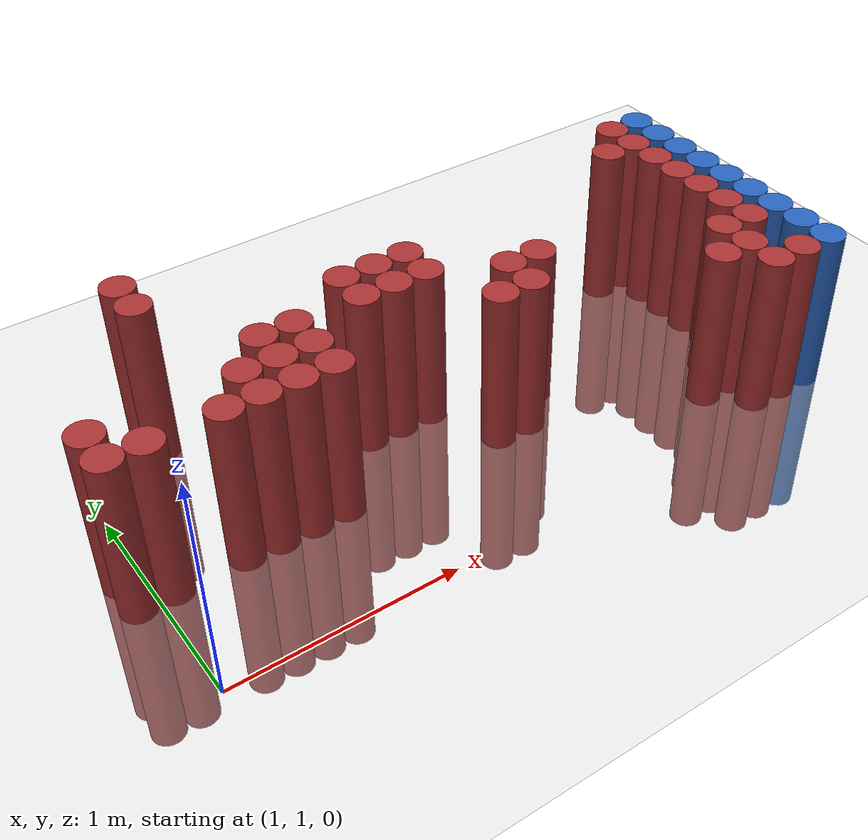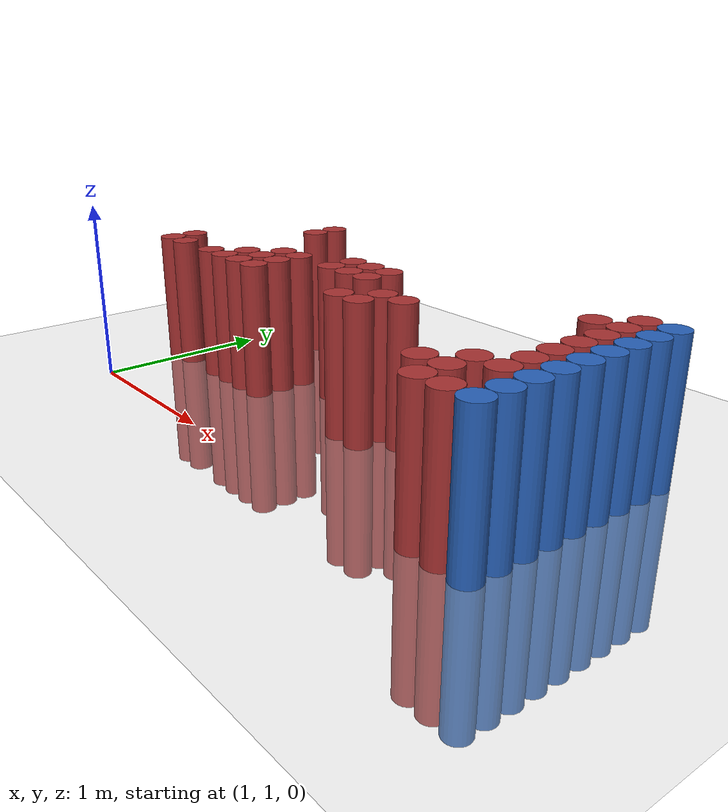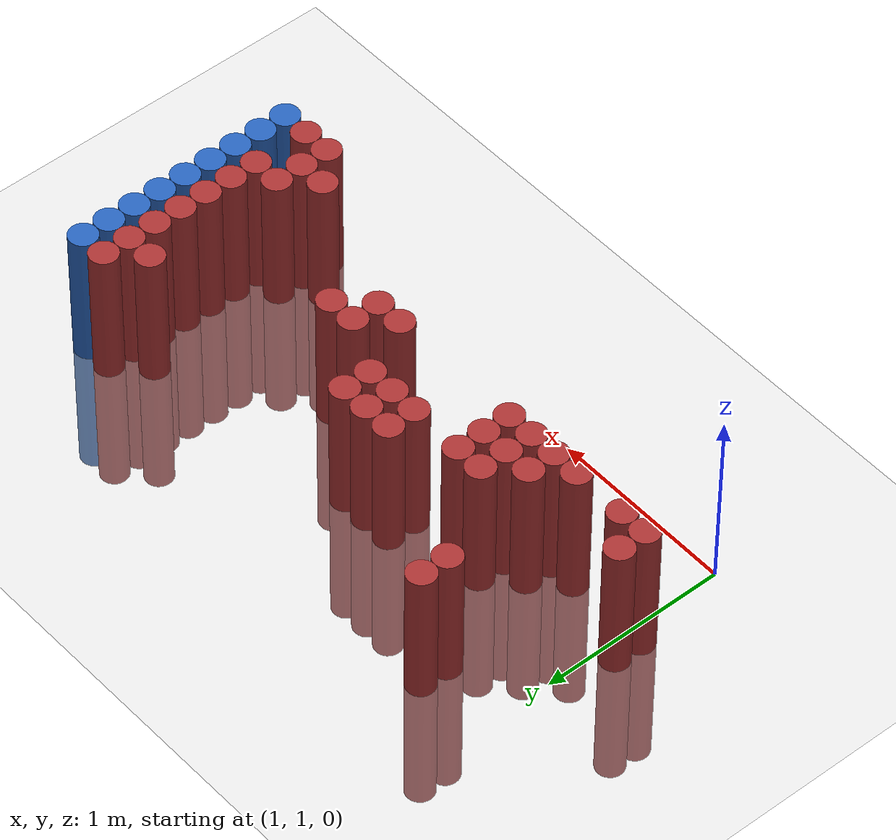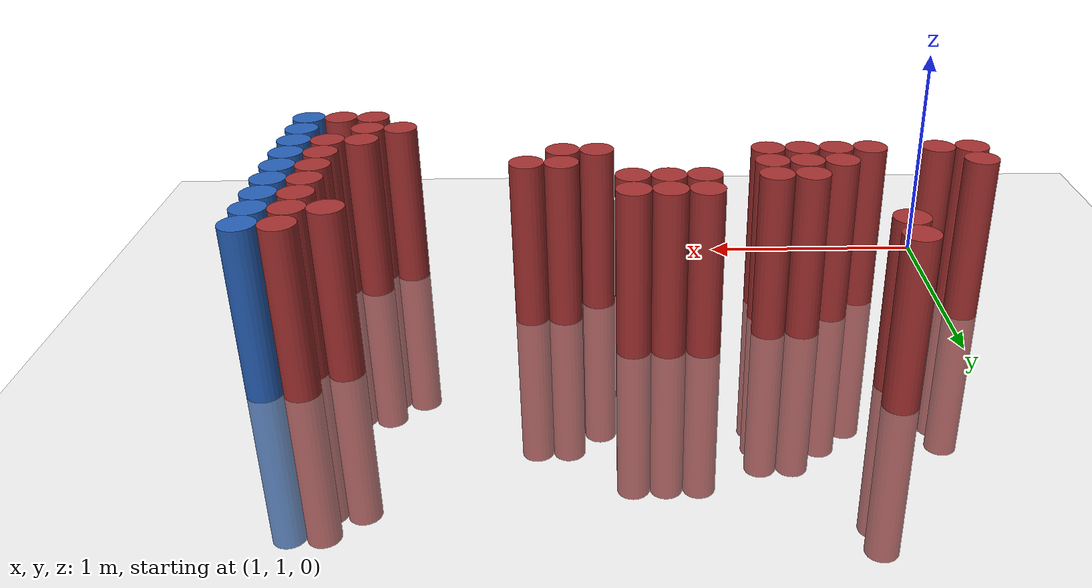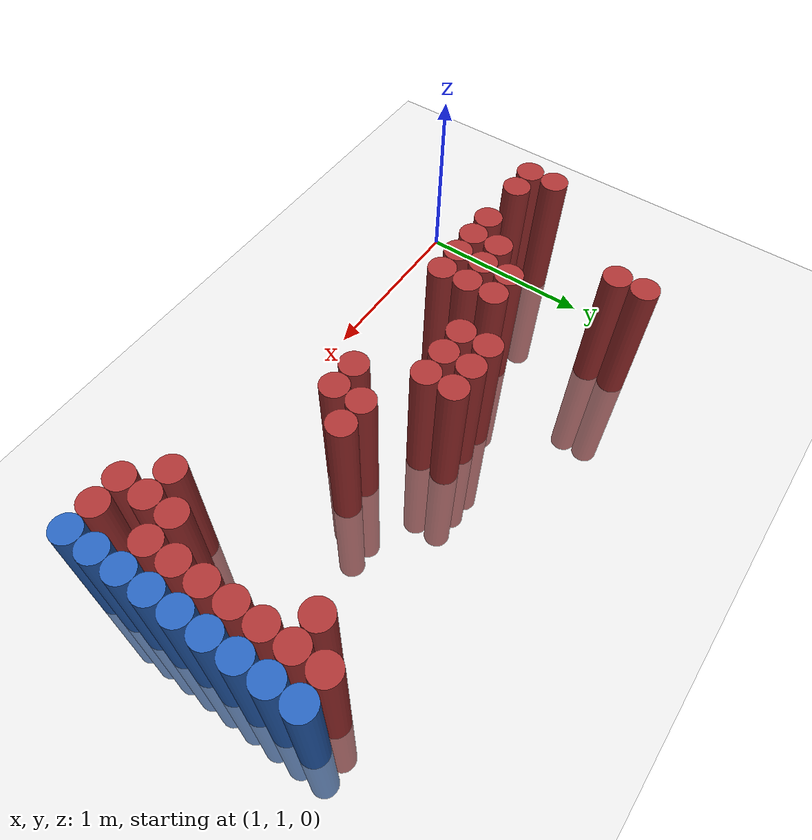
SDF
<sdf version="1.6">
 <world name="default">
  <model name="ground_plane">
   <static>1</static>
   <link name="link">
    <collision name="collision">
     <geometry><plane><normal>0 0 1</normal><size>100 100</size></plane></geometry>
     <surface><friction><ode><mu>100</mu><mu2>50</mu2></ode></friction></surface>
    </collision>
    <visual name="visual">
     <cast_shadows>0</cast_shadows>
     <geometry><plane><normal>0 0 1</normal><size>100 100</size></plane></geometry>
     <material>
      <script><uri>file://media/materials/scripts/gazebo.material</uri><name>Gazebo/Grey</name></script>
     </material>
    </visual>
   </link>
  </model>
  <model name="unit_cylinder_130">
   <static>1</static>
   <pose>3.925000 1.225000 0.000000 0.000000 0.000000 0.000000</pose>
   <link name="link">
    <inertial>
     <mass>1</mass>
     <inertia><ixx>0.145833</ixx><ixy>0</ixy><ixz>0</ixz><iyy>0.145833</iyy><iyz>0</iyz><izz>0.125</izz></inertia>
    </inertial>
    <collision name="collision">
     <geometry><cylinder><radius>0.075000</radius><length>1.5</length></cylinder></geometry>
    </collision>
    <visual name="visual">
     <geometry><cylinder><radius>0.075000</radius><length>1.5</length></cylinder></geometry>
     <material>
      <ambient>0.152000 0.379000 0.720000 1</ambient>
      <diffuse>0.152000 0.379000 0.720000 1</diffuse>
     </material>
     <material>
      <script><name>Gazebo/Grey</name><uri>file://media/materials/scripts/gazebo.material</uri></script>
     </material>
    </visual>
   </link>
  </model>
  <model name="unit_cylinder_132">
   <static>1</static>
   <pose>3.925000 1.375000 0.000000 0.000000 0.000000 0.000000</pose>
   <link name="link">
    <inertial>
     <mass>1</mass>
     <inertia><ixx>0.145833</ixx><ixy>0</ixy><ixz>0</ixz><iyy>0.145833</iyy><iyz>0</iyz><izz>0.125</izz></inertia>
    </inertial>
    <collision name="collision">
     <geometry><cylinder><radius>0.075000</radius><length>1.5</length></cylinder></geometry>
    </collision>
    <visual name="visual">
     <geometry><cylinder><radius>0.075000</radius><length>1.5</length></cylinder></geometry>
     <material>
      <ambient>0.152000 0.379000 0.720000 1</ambient>
      <diffuse>0.152000 0.379000 0.720000 1</diffuse>
     </material>
     <material>
      <script><name>Gazebo/Grey</name><uri>file://media/materials/scripts/gazebo.material</uri></script>
     </material>
    </visual>
   </link>
  </model>
  <model name="unit_cylinder_134">
   <static>1</static>
   <pose>3.925000 1.525000 0.000000 0.000000 0.000000 0.000000</pose>
   <link name="link">
    <inertial>
     <mass>1</mass>
     <inertia><ixx>0.145833</ixx><ixy>0</ixy><ixz>0</ixz><iyy>0.145833</iyy><iyz>0</iyz><izz>0.125</izz></inertia>
    </inertial>
    <collision name="collision">
     <geometry><cylinder><radius>0.075000</radius><length>1.5</length></cylinder></geometry>
    </collision>
    <visual name="visual">
     <geometry><cylinder><radius>0.075000</radius><length>1.5</length></cylinder></geometry>
     <material>
      <ambient>0.152000 0.379000 0.720000 1</ambient>
      <diffuse>0.152000 0.379000 0.720000 1</diffuse>
     </material>
     <material>
      <script><name>Gazebo/Grey</name><uri>file://media/materials/scripts/gazebo.material</uri></script>
     </material>
    </visual>
   </link>
  </model>
  <model name="unit_cylinder_136">
   <static>1</static>
   <pose>3.925000 1.675000 0.000000 0.000000 0.000000 0.000000</pose>
   <link name="link">
    <inertial>
     <mass>1</mass>
     <inertia><ixx>0.145833</ixx><ixy>0</ixy><ixz>0</ixz><iyy>0.145833</iyy><iyz>0</iyz><izz>0.125</izz></inertia>
    </inertial>
    <collision name="collision">
     <geometry><cylinder><radius>0.075000</radius><length>1.5</length></cylinder></geometry>
    </collision>
    <visual name="visual">
     <geometry><cylinder><radius>0.075000</radius><length>1.5</length></cylinder></geometry>
     <material>
      <ambient>0.152000 0.379000 0.720000 1</ambient>
      <diffuse>0.152000 0.379000 0.720000 1</diffuse>
     </material>
     <material>
      <script><name>Gazebo/Grey</name><uri>file://media/materials/scripts/gazebo.material</uri></script>
     </material>
    </visual>
   </link>
  </model>
  <model name="unit_cylinder_138">
   <static>1</static>
   <pose>3.925000 1.825000 0.000000 0.000000 0.000000 0.000000</pose>
   <link name="link">
    <inertial>
     <mass>1</mass>
     <inertia><ixx>0.145833</ixx><ixy>0</ixy><ixz>0</ixz><iyy>0.145833</iyy><iyz>0</iyz><izz>0.125</izz></inertia>
    </inertial>
    <collision name="collision">
     <geometry><cylinder><radius>0.075000</radius><length>1.5</length></cylinder></geometry>
    </collision>
    <visual name="visual">
     <geometry><cylinder><radius>0.075000</radius><length>1.5</length></cylinder></geometry>
     <material>
      <ambient>0.152000 0.379000 0.720000 1</ambient>
      <diffuse>0.152000 0.379000 0.720000 1</diffuse>
     </material>
     <material>
      <script><name>Gazebo/Grey</name><uri>file://media/materials/scripts/gazebo.material</uri></script>
     </material>
    </visual>
   </link>
  </model>
  <model name="unit_cylinder_140">
   <static>1</static>
   <pose>3.925000 1.975000 0.000000 0.000000 0.000000 0.000000</pose>
   <link name="link">
    <inertial>
     <mass>1</mass>
     <inertia><ixx>0.145833</ixx><ixy>0</ixy><ixz>0</ixz><iyy>0.145833</iyy><iyz>0</iyz><izz>0.125</izz></inertia>
    </inertial>
    <collision name="collision">
     <geometry><cylinder><radius>0.075000</radius><length>1.5</length></cylinder></geometry>
    </collision>
    <visual name="visual">
     <geometry><cylinder><radius>0.075000</radius><length>1.5</length></cylinder></geometry>
     <material>
      <ambient>0.152000 0.379000 0.720000 1</ambient>
      <diffuse>0.152000 0.379000 0.720000 1</diffuse>
     </material>
     <material>
      <script><name>Gazebo/Grey</name><uri>file://media/materials/scripts/gazebo.material</uri></script>
     </material>
    </visual>
   </link>
  </model>
  <model name="unit_cylinder_142">
   <static>1</static>
   <pose>3.925000 2.125000 0.000000 0.000000 0.000000 0.000000</pose>
   <link name="link">
    <inertial>
     <mass>1</mass>
     <inertia><ixx>0.145833</ixx><ixy>0</ixy><ixz>0</ixz><iyy>0.145833</iyy><iyz>0</iyz><izz>0.125</izz></inertia>
    </inertial>
    <collision name="collision">
     <geometry><cylinder><radius>0.075000</radius><length>1.5</length></cylinder></geometry>
    </collision>
    <visual name="visual">
     <geometry><cylinder><radius>0.075000</radius><length>1.5</length></cylinder></geometry>
     <material>
      <ambient>0.152000 0.379000 0.720000 1</ambient>
      <diffuse>0.152000 0.379000 0.720000 1</diffuse>
     </material>
     <material>
      <script><name>Gazebo/Grey</name><uri>file://media/materials/scripts/gazebo.material</uri></script>
     </material>
    </visual>
   </link>
  </model>
  <model name="unit_cylinder_144">
   <static>1</static>
   <pose>3.925000 2.275000 0.000000 0.000000 0.000000 0.000000</pose>
   <link name="link">
    <inertial>
     <mass>1</mass>
     <inertia><ixx>0.145833</ixx><ixy>0</ixy><ixz>0</ixz><iyy>0.145833</iyy><iyz>0</iyz><izz>0.125</izz></inertia>
    </inertial>
    <collision name="collision">
     <geometry><cylinder><radius>0.075000</radius><length>1.5</length></cylinder></geometry>
    </collision>
    <visual name="visual">
     <geometry><cylinder><radius>0.075000</radius><length>1.5</length></cylinder></geometry>
     <material>
      <ambient>0.152000 0.379000 0.720000 1</ambient>
      <diffuse>0.152000 0.379000 0.720000 1</diffuse>
     </material>
     <material>
      <script><name>Gazebo/Grey</name><uri>file://media/materials/scripts/gazebo.material</uri></script>
     </material>
    </visual>
   </link>
  </model>
  <model name="unit_cylinder_369">
   <static>1</static>
   <pose>0.925000 1.525000 0.000000 0.000000 0.000000 0.000000</pose>
   <link name="link">
    <inertial>
     <mass>1</mass>
     <inertia><ixx>0.145833</ixx><ixy>0</ixy><ixz>0</ixz><iyy>0.145833</iyy><iyz>0</iyz><izz>0.125</izz></inertia>
    </inertial>
    <collision name="collision">
     <geometry><cylinder><radius>0.075000</radius><length>1.5</length></cylinder></geometry>
    </collision>
    <visual name="visual">
     <geometry><cylinder><radius>0.075000</radius><length>1.5</length></cylinder></geometry>
     <material>
      <ambient>0.648000 0.192000 0.192000 1</ambient>
      <diffuse>0.648000 0.192000 0.192000 1</diffuse>
     </material>
     <material>
      <script><name>Gazebo/Grey</name><uri>file://media/materials/scripts/gazebo.material</uri></script>
     </material>
    </visual>
   </link>
  </model>
  <model name="unit_cylinder_370">
   <static>1</static>
   <pose>0.925000 1.675000 0.000000 0.000000 0.000000 0.000000</pose>
   <link name="link">
    <inertial>
     <mass>1</mass>
     <inertia><ixx>0.145833</ixx><ixy>0</ixy><ixz>0</ixz><iyy>0.145833</iyy><iyz>0</iyz><izz>0.125</izz></inertia>
    </inertial>
    <collision name="collision">
     <geometry><cylinder><radius>0.075000</radius><length>1.5</length></cylinder></geometry>
    </collision>
    <visual name="visual">
     <geometry><cylinder><radius>0.075000</radius><length>1.5</length></cylinder></geometry>
     <material>
      <ambient>0.648000 0.192000 0.192000 1</ambient>
      <diffuse>0.648000 0.192000 0.192000 1</diffuse>
     </material>
     <material>
      <script><name>Gazebo/Grey</name><uri>file://media/materials/scripts/gazebo.material</uri></script>
     </material>
    </visual>
   </link>
  </model>
  <model name="unit_cylinder_373">
   <static>1</static>
   <pose>1.075000 1.525000 0.000000 0.000000 0.000000 0.000000</pose>
   <link name="link">
    <inertial>
     <mass>1</mass>
     <inertia><ixx>0.145833</ixx><ixy>0</ixy><ixz>0</ixz><iyy>0.145833</iyy><iyz>0</iyz><izz>0.125</izz></inertia>
    </inertial>
    <collision name="collision">
     <geometry><cylinder><radius>0.075000</radius><length>1.5</length></cylinder></geometry>
    </collision>
    <visual name="visual">
     <geometry><cylinder><radius>0.075000</radius><length>1.5</length></cylinder></geometry>
     <material>
      <ambient>0.648000 0.192000 0.192000 1</ambient>
      <diffuse>0.648000 0.192000 0.192000 1</diffuse>
     </material>
     <material>
      <script><name>Gazebo/Grey</name><uri>file://media/materials/scripts/gazebo.material</uri></script>
     </material>
    </visual>
   </link>
  </model>
  <model name="unit_cylinder_379">
   <static>1</static>
   <pose>1.375000 1.525000 0.000000 0.000000 0.000000 0.000000</pose>
   <link name="link">
    <inertial>
     <mass>1</mass>
     <inertia><ixx>0.145833</ixx><ixy>0</ixy><ixz>0</ixz><iyy>0.145833</iyy><iyz>0</iyz><izz>0.125</izz></inertia>
    </inertial>
    <collision name="collision">
     <geometry><cylinder><radius>0.075000</radius><length>1.5</length></cylinder></geometry>
    </collision>
    <visual name="visual">
     <geometry><cylinder><radius>0.075000</radius><length>1.5</length></cylinder></geometry>
     <material>
      <ambient>0.648000 0.192000 0.192000 1</ambient>
      <diffuse>0.648000 0.192000 0.192000 1</diffuse>
     </material>
     <material>
      <script><name>Gazebo/Grey</name><uri>file://media/materials/scripts/gazebo.material</uri></script>
     </material>
    </visual>
   </link>
  </model>
  <model name="unit_cylinder_380">
   <static>1</static>
   <pose>1.375000 2.275000 0.000000 0.000000 0.000000 0.000000</pose>
   <link name="link">
    <inertial>
     <mass>1</mass>
     <inertia><ixx>0.145833</ixx><ixy>0</ixy><ixz>0</ixz><iyy>0.145833</iyy><iyz>0</iyz><izz>0.125</izz></inertia>
    </inertial>
    <collision name="collision">
     <geometry><cylinder><radius>0.075000</radius><length>1.5</length></cylinder></geometry>
    </collision>
    <visual name="visual">
     <geometry><cylinder><radius>0.075000</radius><length>1.5</length></cylinder></geometry>
     <material>
      <ambient>0.648000 0.192000 0.192000 1</ambient>
      <diffuse>0.648000 0.192000 0.192000 1</diffuse>
     </material>
     <material>
      <script><name>Gazebo/Grey</name><uri>file://media/materials/scripts/gazebo.material</uri></script>
     </material>
    </visual>
   </link>
  </model>
  <model name="unit_cylinder_381">
   <static>1</static>
   <pose>1.375000 2.425000 0.000000 0.000000 0.000000 0.000000</pose>
   <link name="link">
    <inertial>
     <mass>1</mass>
     <inertia><ixx>0.145833</ixx><ixy>0</ixy><ixz>0</ixz><iyy>0.145833</iyy><iyz>0</iyz><izz>0.125</izz></inertia>
    </inertial>
    <collision name="collision">
     <geometry><cylinder><radius>0.075000</radius><length>1.5</length></cylinder></geometry>
    </collision>
    <visual name="visual">
     <geometry><cylinder><radius>0.075000</radius><length>1.5</length></cylinder></geometry>
     <material>
      <ambient>0.648000 0.192000 0.192000 1</ambient>
      <diffuse>0.648000 0.192000 0.192000 1</diffuse>
     </material>
     <material>
      <script><name>Gazebo/Grey</name><uri>file://media/materials/scripts/gazebo.material</uri></script>
     </material>
    </visual>
   </link>
  </model>
  <model name="unit_cylinder_382">
   <static>1</static>
   <pose>1.525000 1.525000 0.000000 0.000000 0.000000 0.000000</pose>
   <link name="link">
    <inertial>
     <mass>1</mass>
     <inertia><ixx>0.145833</ixx><ixy>0</ixy><ixz>0</ixz><iyy>0.145833</iyy><iyz>0</iyz><izz>0.125</izz></inertia>
    </inertial>
    <collision name="collision">
     <geometry><cylinder><radius>0.075000</radius><length>1.5</length></cylinder></geometry>
    </collision>
    <visual name="visual">
     <geometry><cylinder><radius>0.075000</radius><length>1.5</length></cylinder></geometry>
     <material>
      <ambient>0.648000 0.192000 0.192000 1</ambient>
      <diffuse>0.648000 0.192000 0.192000 1</diffuse>
     </material>
     <material>
      <script><name>Gazebo/Grey</name><uri>file://media/materials/scripts/gazebo.material</uri></script>
     </material>
    </visual>
   </link>
  </model>
  <model name="unit_cylinder_383">
   <static>1</static>
   <pose>1.525000 1.675000 0.000000 0.000000 0.000000 0.000000</pose>
   <link name="link">
    <inertial>
     <mass>1</mass>
     <inertia><ixx>0.145833</ixx><ixy>0</ixy><ixz>0</ixz><iyy>0.145833</iyy><iyz>0</iyz><izz>0.125</izz></inertia>
    </inertial>
    <collision name="collision">
     <geometry><cylinder><radius>0.075000</radius><length>1.5</length></cylinder></geometry>
    </collision>
    <visual name="visual">
     <geometry><cylinder><radius>0.075000</radius><length>1.5</length></cylinder></geometry>
     <material>
      <ambient>0.648000 0.192000 0.192000 1</ambient>
      <diffuse>0.648000 0.192000 0.192000 1</diffuse>
     </material>
     <material>
      <script><name>Gazebo/Grey</name><uri>file://media/materials/scripts/gazebo.material</uri></script>
     </material>
    </visual>
   </link>
  </model>
  <model name="unit_cylinder_385">
   <static>1</static>
   <pose>1.675000 1.525000 0.000000 0.000000 0.000000 0.000000</pose>
   <link name="link">
    <inertial>
     <mass>1</mass>
     <inertia><ixx>0.145833</ixx><ixy>0</ixy><ixz>0</ixz><iyy>0.145833</iyy><iyz>0</iyz><izz>0.125</izz></inertia>
    </inertial>
    <collision name="collision">
     <geometry><cylinder><radius>0.075000</radius><length>1.5</length></cylinder></geometry>
    </collision>
    <visual name="visual">
     <geometry><cylinder><radius>0.075000</radius><length>1.5</length></cylinder></geometry>
     <material>
      <ambient>0.648000 0.192000 0.192000 1</ambient>
      <diffuse>0.648000 0.192000 0.192000 1</diffuse>
     </material>
     <material>
      <script><name>Gazebo/Grey</name><uri>file://media/materials/scripts/gazebo.material</uri></script>
     </material>
    </visual>
   </link>
  </model>
  <model name="unit_cylinder_386">
   <static>1</static>
   <pose>1.675000 1.675000 0.000000 0.000000 0.000000 0.000000</pose>
   <link name="link">
    <inertial>
     <mass>1</mass>
     <inertia><ixx>0.145833</ixx><ixy>0</ixy><ixz>0</ixz><iyy>0.145833</iyy><iyz>0</iyz><izz>0.125</izz></inertia>
    </inertial>
    <collision name="collision">
     <geometry><cylinder><radius>0.075000</radius><length>1.5</length></cylinder></geometry>
    </collision>
    <visual name="visual">
     <geometry><cylinder><radius>0.075000</radius><length>1.5</length></cylinder></geometry>
     <material>
      <ambient>0.648000 0.192000 0.192000 1</ambient>
      <diffuse>0.648000 0.192000 0.192000 1</diffuse>
     </material>
     <material>
      <script><name>Gazebo/Grey</name><uri>file://media/materials/scripts/gazebo.material</uri></script>
     </material>
    </visual>
   </link>
  </model>
  <model name="unit_cylinder_387">
   <static>1</static>
   <pose>1.675000 1.825000 0.000000 0.000000 0.000000 0.000000</pose>
   <link name="link">
    <inertial>
     <mass>1</mass>
     <inertia><ixx>0.145833</ixx><ixy>0</ixy><ixz>0</ixz><iyy>0.145833</iyy><iyz>0</iyz><izz>0.125</izz></inertia>
    </inertial>
    <collision name="collision">
     <geometry><cylinder><radius>0.075000</radius><length>1.5</length></cylinder></geometry>
    </collision>
    <visual name="visual">
     <geometry><cylinder><radius>0.075000</radius><length>1.5</length></cylinder></geometry>
     <material>
      <ambient>0.648000 0.192000 0.192000 1</ambient>
      <diffuse>0.648000 0.192000 0.192000 1</diffuse>
     </material>
     <material>
      <script><name>Gazebo/Grey</name><uri>file://media/materials/scripts/gazebo.material</uri></script>
     </material>
    </visual>
   </link>
  </model>
  <model name="unit_cylinder_388">
   <static>1</static>
   <pose>1.825000 1.525000 0.000000 0.000000 0.000000 0.000000</pose>
   <link name="link">
    <inertial>
     <mass>1</mass>
     <inertia><ixx>0.145833</ixx><ixy>0</ixy><ixz>0</ixz><iyy>0.145833</iyy><iyz>0</iyz><izz>0.125</izz></inertia>
    </inertial>
    <collision name="collision">
     <geometry><cylinder><radius>0.075000</radius><length>1.5</length></cylinder></geometry>
    </collision>
    <visual name="visual">
     <geometry><cylinder><radius>0.075000</radius><length>1.5</length></cylinder></geometry>
     <material>
      <ambient>0.648000 0.192000 0.192000 1</ambient>
      <diffuse>0.648000 0.192000 0.192000 1</diffuse>
     </material>
     <material>
      <script><name>Gazebo/Grey</name><uri>file://media/materials/scripts/gazebo.material</uri></script>
     </material>
    </visual>
   </link>
  </model>
  <model name="unit_cylinder_389">
   <static>1</static>
   <pose>1.825000 1.675000 0.000000 0.000000 0.000000 0.000000</pose>
   <link name="link">
    <inertial>
     <mass>1</mass>
     <inertia><ixx>0.145833</ixx><ixy>0</ixy><ixz>0</ixz><iyy>0.145833</iyy><iyz>0</iyz><izz>0.125</izz></inertia>
    </inertial>
    <collision name="collision">
     <geometry><cylinder><radius>0.075000</radius><length>1.5</length></cylinder></geometry>
    </collision>
    <visual name="visual">
     <geometry><cylinder><radius>0.075000</radius><length>1.5</length></cylinder></geometry>
     <material>
      <ambient>0.648000 0.192000 0.192000 1</ambient>
      <diffuse>0.648000 0.192000 0.192000 1</diffuse>
     </material>
     <material>
      <script><name>Gazebo/Grey</name><uri>file://media/materials/scripts/gazebo.material</uri></script>
     </material>
    </visual>
   </link>
  </model>
  <model name="unit_cylinder_390">
   <static>1</static>
   <pose>1.825000 1.825000 0.000000 0.000000 0.000000 0.000000</pose>
   <link name="link">
    <inertial>
     <mass>1</mass>
     <inertia><ixx>0.145833</ixx><ixy>0</ixy><ixz>0</ixz><iyy>0.145833</iyy><iyz>0</iyz><izz>0.125</izz></inertia>
    </inertial>
    <collision name="collision">
     <geometry><cylinder><radius>0.075000</radius><length>1.5</length></cylinder></geometry>
    </collision>
    <visual name="visual">
     <geometry><cylinder><radius>0.075000</radius><length>1.5</length></cylinder></geometry>
     <material>
      <ambient>0.648000 0.192000 0.192000 1</ambient>
      <diffuse>0.648000 0.192000 0.192000 1</diffuse>
     </material>
     <material>
      <script><name>Gazebo/Grey</name><uri>file://media/materials/scripts/gazebo.material</uri></script>
     </material>
    </visual>
   </link>
  </model>
  <model name="unit_cylinder_399">
   <static>1</static>
   <pose>2.125000 1.825000 0.000000 0.000000 0.000000 0.000000</pose>
   <link name="link">
    <inertial>
     <mass>1</mass>
     <inertia><ixx>0.145833</ixx><ixy>0</ixy><ixz>0</ixz><iyy>0.145833</iyy><iyz>0</iyz><izz>0.125</izz></inertia>
    </inertial>
    <collision name="collision">
     <geometry><cylinder><radius>0.075000</radius><length>1.5</length></cylinder></geometry>
    </collision>
    <visual name="visual">
     <geometry><cylinder><radius>0.075000</radius><length>1.5</length></cylinder></geometry>
     <material>
      <ambient>0.648000 0.192000 0.192000 1</ambient>
      <diffuse>0.648000 0.192000 0.192000 1</diffuse>
     </material>
     <material>
      <script><name>Gazebo/Grey</name><uri>file://media/materials/scripts/gazebo.material</uri></script>
     </material>
    </visual>
   </link>
  </model>
  <model name="unit_cylinder_400">
   <static>1</static>
   <pose>2.125000 1.975000 0.000000 0.000000 0.000000 0.000000</pose>
   <link name="link">
    <inertial>
     <mass>1</mass>
     <inertia><ixx>0.145833</ixx><ixy>0</ixy><ixz>0</ixz><iyy>0.145833</iyy><iyz>0</iyz><izz>0.125</izz></inertia>
    </inertial>
    <collision name="collision">
     <geometry><cylinder><radius>0.075000</radius><length>1.5</length></cylinder></geometry>
    </collision>
    <visual name="visual">
     <geometry><cylinder><radius>0.075000</radius><length>1.5</length></cylinder></geometry>
     <material>
      <ambient>0.648000 0.192000 0.192000 1</ambient>
      <diffuse>0.648000 0.192000 0.192000 1</diffuse>
     </material>
     <material>
      <script><name>Gazebo/Grey</name><uri>file://media/materials/scripts/gazebo.material</uri></script>
     </material>
    </visual>
   </link>
  </model>
  <model name="unit_cylinder_407">
   <static>1</static>
   <pose>2.275000 1.825000 0.000000 0.000000 0.000000 0.000000</pose>
   <link name="link">
    <inertial>
     <mass>1</mass>
     <inertia><ixx>0.145833</ixx><ixy>0</ixy><ixz>0</ixz><iyy>0.145833</iyy><iyz>0</iyz><izz>0.125</izz></inertia>
    </inertial>
    <collision name="collision">
     <geometry><cylinder><radius>0.075000</radius><length>1.5</length></cylinder></geometry>
    </collision>
    <visual name="visual">
     <geometry><cylinder><radius>0.075000</radius><length>1.5</length></cylinder></geometry>
     <material>
      <ambient>0.648000 0.192000 0.192000 1</ambient>
      <diffuse>0.648000 0.192000 0.192000 1</diffuse>
     </material>
     <material>
      <script><name>Gazebo/Grey</name><uri>file://media/materials/scripts/gazebo.material</uri></script>
     </material>
    </visual>
   </link>
  </model>
  <model name="unit_cylinder_408">
   <static>1</static>
   <pose>2.275000 1.975000 0.000000 0.000000 0.000000 0.000000</pose>
   <link name="link">
    <inertial>
     <mass>1</mass>
     <inertia><ixx>0.145833</ixx><ixy>0</ixy><ixz>0</ixz><iyy>0.145833</iyy><iyz>0</iyz><izz>0.125</izz></inertia>
    </inertial>
    <collision name="collision">
     <geometry><cylinder><radius>0.075000</radius><length>1.5</length></cylinder></geometry>
    </collision>
    <visual name="visual">
     <geometry><cylinder><radius>0.075000</radius><length>1.5</length></cylinder></geometry>
     <material>
      <ambient>0.648000 0.192000 0.192000 1</ambient>
      <diffuse>0.648000 0.192000 0.192000 1</diffuse>
     </material>
     <material>
      <script><name>Gazebo/Grey</name><uri>file://media/materials/scripts/gazebo.material</uri></script>
     </material>
    </visual>
   </link>
  </model>
  <model name="unit_cylinder_415">
   <static>1</static>
   <pose>2.425000 1.825000 0.000000 0.000000 0.000000 0.000000</pose>
   <link name="link">
    <inertial>
     <mass>1</mass>
     <inertia><ixx>0.145833</ixx><ixy>0</ixy><ixz>0</ixz><iyy>0.145833</iyy><iyz>0</iyz><izz>0.125</izz></inertia>
    </inertial>
    <collision name="collision">
     <geometry><cylinder><radius>0.075000</radius><length>1.5</length></cylinder></geometry>
    </collision>
    <visual name="visual">
     <geometry><cylinder><radius>0.075000</radius><length>1.5</length></cylinder></geometry>
     <material>
      <ambient>0.648000 0.192000 0.192000 1</ambient>
      <diffuse>0.648000 0.192000 0.192000 1</diffuse>
     </material>
     <material>
      <script><name>Gazebo/Grey</name><uri>file://media/materials/scripts/gazebo.material</uri></script>
     </material>
    </visual>
   </link>
  </model>
  <model name="unit_cylinder_416">
   <static>1</static>
   <pose>2.425000 1.975000 0.000000 0.000000 0.000000 0.000000</pose>
   <link name="link">
    <inertial>
     <mass>1</mass>
     <inertia><ixx>0.145833</ixx><ixy>0</ixy><ixz>0</ixz><iyy>0.145833</iyy><iyz>0</iyz><izz>0.125</izz></inertia>
    </inertial>
    <collision name="collision">
     <geometry><cylinder><radius>0.075000</radius><length>1.5</length></cylinder></geometry>
    </collision>
    <visual name="visual">
     <geometry><cylinder><radius>0.075000</radius><length>1.5</length></cylinder></geometry>
     <material>
      <ambient>0.648000 0.192000 0.192000 1</ambient>
      <diffuse>0.648000 0.192000 0.192000 1</diffuse>
     </material>
     <material>
      <script><name>Gazebo/Grey</name><uri>file://media/materials/scripts/gazebo.material</uri></script>
     </material>
    </visual>
   </link>
  </model>
  <model name="unit_cylinder_421">
   <static>1</static>
   <pose>2.575000 1.525000 0.000000 0.000000 0.000000 0.000000</pose>
   <link name="link">
    <inertial>
     <mass>1</mass>
     <inertia><ixx>0.145833</ixx><ixy>0</ixy><ixz>0</ixz><iyy>0.145833</iyy><iyz>0</iyz><izz>0.125</izz></inertia>
    </inertial>
    <collision name="collision">
     <geometry><cylinder><radius>0.075000</radius><length>1.5</length></cylinder></geometry>
    </collision>
    <visual name="visual">
     <geometry><cylinder><radius>0.075000</radius><length>1.5</length></cylinder></geometry>
     <material>
      <ambient>0.648000 0.192000 0.192000 1</ambient>
      <diffuse>0.648000 0.192000 0.192000 1</diffuse>
     </material>
     <material>
      <script><name>Gazebo/Grey</name><uri>file://media/materials/scripts/gazebo.material</uri></script>
     </material>
    </visual>
   </link>
  </model>
  <model name="unit_cylinder_425">
   <static>1</static>
   <pose>2.725000 1.525000 0.000000 0.000000 0.000000 0.000000</pose>
   <link name="link">
    <inertial>
     <mass>1</mass>
     <inertia><ixx>0.145833</ixx><ixy>0</ixy><ixz>0</ixz><iyy>0.145833</iyy><iyz>0</iyz><izz>0.125</izz></inertia>
    </inertial>
    <collision name="collision">
     <geometry><cylinder><radius>0.075000</radius><length>1.5</length></cylinder></geometry>
    </collision>
    <visual name="visual">
     <geometry><cylinder><radius>0.075000</radius><length>1.5</length></cylinder></geometry>
     <material>
      <ambient>0.648000 0.192000 0.192000 1</ambient>
      <diffuse>0.648000 0.192000 0.192000 1</diffuse>
     </material>
     <material>
      <script><name>Gazebo/Grey</name><uri>file://media/materials/scripts/gazebo.material</uri></script>
     </material>
    </visual>
   </link>
  </model>
  <model name="unit_cylinder_426">
   <static>1</static>
   <pose>2.725000 1.675000 0.000000 0.000000 0.000000 0.000000</pose>
   <link name="link">
    <inertial>
     <mass>1</mass>
     <inertia><ixx>0.145833</ixx><ixy>0</ixy><ixz>0</ixz><iyy>0.145833</iyy><iyz>0</iyz><izz>0.125</izz></inertia>
    </inertial>
    <collision name="collision">
     <geometry><cylinder><radius>0.075000</radius><length>1.5</length></cylinder></geometry>
    </collision>
    <visual name="visual">
     <geometry><cylinder><radius>0.075000</radius><length>1.5</length></cylinder></geometry>
     <material>
      <ambient>0.648000 0.192000 0.192000 1</ambient>
      <diffuse>0.648000 0.192000 0.192000 1</diffuse>
     </material>
     <material>
      <script><name>Gazebo/Grey</name><uri>file://media/materials/scripts/gazebo.material</uri></script>
     </material>
    </visual>
   </link>
  </model>
  <model name="unit_cylinder_431">
   <static>1</static>
   <pose>2.875000 1.675000 0.000000 0.000000 0.000000 0.000000</pose>
   <link name="link">
    <inertial>
     <mass>1</mass>
     <inertia><ixx>0.145833</ixx><ixy>0</ixy><ixz>0</ixz><iyy>0.145833</iyy><iyz>0</iyz><izz>0.125</izz></inertia>
    </inertial>
    <collision name="collision">
     <geometry><cylinder><radius>0.075000</radius><length>1.5</length></cylinder></geometry>
    </collision>
    <visual name="visual">
     <geometry><cylinder><radius>0.075000</radius><length>1.5</length></cylinder></geometry>
     <material>
      <ambient>0.648000 0.192000 0.192000 1</ambient>
      <diffuse>0.648000 0.192000 0.192000 1</diffuse>
     </material>
     <material>
      <script><name>Gazebo/Grey</name><uri>file://media/materials/scripts/gazebo.material</uri></script>
     </material>
    </visual>
   </link>
  </model>
  <model name="unit_cylinder_457">
   <static>1</static>
   <pose>3.475000 1.225000 0.000000 0.000000 0.000000 0.000000</pose>
   <link name="link">
    <inertial>
     <mass>1</mass>
     <inertia><ixx>0.145833</ixx><ixy>0</ixy><ixz>0</ixz><iyy>0.145833</iyy><iyz>0</iyz><izz>0.125</izz></inertia>
    </inertial>
    <collision name="collision">
     <geometry><cylinder><radius>0.075000</radius><length>1.5</length></cylinder></geometry>
    </collision>
    <visual name="visual">
     <geometry><cylinder><radius>0.075000</radius><length>1.5</length></cylinder></geometry>
     <material>
      <ambient>0.648000 0.192000 0.192000 1</ambient>
      <diffuse>0.648000 0.192000 0.192000 1</diffuse>
     </material>
     <material>
      <script><name>Gazebo/Grey</name><uri>file://media/materials/scripts/gazebo.material</uri></script>
     </material>
    </visual>
   </link>
  </model>
  <model name="unit_cylinder_461">
   <static>1</static>
   <pose>3.625000 1.075000 0.000000 0.000000 0.000000 0.000000</pose>
   <link name="link">
    <inertial>
     <mass>1</mass>
     <inertia><ixx>0.145833</ixx><ixy>0</ixy><ixz>0</ixz><iyy>0.145833</iyy><iyz>0</iyz><izz>0.125</izz></inertia>
    </inertial>
    <collision name="collision">
     <geometry><cylinder><radius>0.075000</radius><length>1.5</length></cylinder></geometry>
    </collision>
    <visual name="visual">
     <geometry><cylinder><radius>0.075000</radius><length>1.5</length></cylinder></geometry>
     <material>
      <ambient>0.648000 0.192000 0.192000 1</ambient>
      <diffuse>0.648000 0.192000 0.192000 1</diffuse>
     </material>
     <material>
      <script><name>Gazebo/Grey</name><uri>file://media/materials/scripts/gazebo.material</uri></script>
     </material>
    </visual>
   </link>
  </model>
  <model name="unit_cylinder_462">
   <static>1</static>
   <pose>3.625000 1.225000 0.000000 0.000000 0.000000 0.000000</pose>
   <link name="link">
    <inertial>
     <mass>1</mass>
     <inertia><ixx>0.145833</ixx><ixy>0</ixy><ixz>0</ixz><iyy>0.145833</iyy><iyz>0</iyz><izz>0.125</izz></inertia>
    </inertial>
    <collision name="collision">
     <geometry><cylinder><radius>0.075000</radius><length>1.5</length></cylinder></geometry>
    </collision>
    <visual name="visual">
     <geometry><cylinder><radius>0.075000</radius><length>1.5</length></cylinder></geometry>
     <material>
      <ambient>0.648000 0.192000 0.192000 1</ambient>
      <diffuse>0.648000 0.192000 0.192000 1</diffuse>
     </material>
     <material>
      <script><name>Gazebo/Grey</name><uri>file://media/materials/scripts/gazebo.material</uri></script>
     </material>
    </visual>
   </link>
  </model>
  <model name="unit_cylinder_463">
   <static>1</static>
   <pose>3.625000 1.375000 0.000000 0.000000 0.000000 0.000000</pose>
   <link name="link">
    <inertial>
     <mass>1</mass>
     <inertia><ixx>0.145833</ixx><ixy>0</ixy><ixz>0</ixz><iyy>0.145833</iyy><iyz>0</iyz><izz>0.125</izz></inertia>
    </inertial>
    <collision name="collision">
     <geometry><cylinder><radius>0.075000</radius><length>1.5</length></cylinder></geometry>
    </collision>
    <visual name="visual">
     <geometry><cylinder><radius>0.075000</radius><length>1.5</length></cylinder></geometry>
     <material>
      <ambient>0.648000 0.192000 0.192000 1</ambient>
      <diffuse>0.648000 0.192000 0.192000 1</diffuse>
     </material>
     <material>
      <script><name>Gazebo/Grey</name><uri>file://media/materials/scripts/gazebo.material</uri></script>
     </material>
    </visual>
   </link>
  </model>
  <model name="unit_cylinder_464">
   <static>1</static>
   <pose>3.625000 2.125000 0.000000 0.000000 0.000000 0.000000</pose>
   <link name="link">
    <inertial>
     <mass>1</mass>
     <inertia><ixx>0.145833</ixx><ixy>0</ixy><ixz>0</ixz><iyy>0.145833</iyy><iyz>0</iyz><izz>0.125</izz></inertia>
    </inertial>
    <collision name="collision">
     <geometry><cylinder><radius>0.075000</radius><length>1.5</length></cylinder></geometry>
    </collision>
    <visual name="visual">
     <geometry><cylinder><radius>0.075000</radius><length>1.5</length></cylinder></geometry>
     <material>
      <ambient>0.648000 0.192000 0.192000 1</ambient>
      <diffuse>0.648000 0.192000 0.192000 1</diffuse>
     </material>
     <material>
      <script><name>Gazebo/Grey</name><uri>file://media/materials/scripts/gazebo.material</uri></script>
     </material>
    </visual>
   </link>
  </model>
  <model name="unit_cylinder_473">
   <static>1</static>
   <pose>3.775000 1.075000 0.000000 0.000000 0.000000 0.000000</pose>
   <link name="link">
    <inertial>
     <mass>1</mass>
     <inertia><ixx>0.145833</ixx><ixy>0</ixy><ixz>0</ixz><iyy>0.145833</iyy><iyz>0</iyz><izz>0.125</izz></inertia>
    </inertial>
    <collision name="collision">
     <geometry><cylinder><radius>0.075000</radius><length>1.5</length></cylinder></geometry>
    </collision>
    <visual name="visual">
     <geometry><cylinder><radius>0.075000</radius><length>1.5</length></cylinder></geometry>
     <material>
      <ambient>0.648000 0.192000 0.192000 1</ambient>
      <diffuse>0.648000 0.192000 0.192000 1</diffuse>
     </material>
     <material>
      <script><name>Gazebo/Grey</name><uri>file://media/materials/scripts/gazebo.material</uri></script>
     </material>
    </visual>
   </link>
  </model>
  <model name="unit_cylinder_474">
   <static>1</static>
   <pose>3.775000 1.375000 0.000000 0.000000 0.000000 0.000000</pose>
   <link name="link">
    <inertial>
     <mass>1</mass>
     <inertia><ixx>0.145833</ixx><ixy>0</ixy><ixz>0</ixz><iyy>0.145833</iyy><iyz>0</iyz><izz>0.125</izz></inertia>
    </inertial>
    <collision name="collision">
     <geometry><cylinder><radius>0.075000</radius><length>1.5</length></cylinder></geometry>
    </collision>
    <visual name="visual">
     <geometry><cylinder><radius>0.075000</radius><length>1.5</length></cylinder></geometry>
     <material>
      <ambient>0.648000 0.192000 0.192000 1</ambient>
      <diffuse>0.648000 0.192000 0.192000 1</diffuse>
     </material>
     <material>
      <script><name>Gazebo/Grey</name><uri>file://media/materials/scripts/gazebo.material</uri></script>
     </material>
    </visual>
   </link>
  </model>
  <model name="unit_cylinder_475">
   <static>1</static>
   <pose>3.775000 1.525000 0.000000 0.000000 0.000000 0.000000</pose>
   <link name="link">
    <inertial>
     <mass>1</mass>
     <inertia><ixx>0.145833</ixx><ixy>0</ixy><ixz>0</ixz><iyy>0.145833</iyy><iyz>0</iyz><izz>0.125</izz></inertia>
    </inertial>
    <collision name="collision">
     <geometry><cylinder><radius>0.075000</radius><length>1.5</length></cylinder></geometry>
    </collision>
    <visual name="visual">
     <geometry><cylinder><radius>0.075000</radius><length>1.5</length></cylinder></geometry>
     <material>
      <ambient>0.648000 0.192000 0.192000 1</ambient>
      <diffuse>0.648000 0.192000 0.192000 1</diffuse>
     </material>
     <material>
      <script><name>Gazebo/Grey</name><uri>file://media/materials/scripts/gazebo.material</uri></script>
     </material>
    </visual>
   </link>
  </model>
  <model name="unit_cylinder_476">
   <static>1</static>
   <pose>3.775000 1.675000 0.000000 0.000000 0.000000 0.000000</pose>
   <link name="link">
    <inertial>
     <mass>1</mass>
     <inertia><ixx>0.145833</ixx><ixy>0</ixy><ixz>0</ixz><iyy>0.145833</iyy><iyz>0</iyz><izz>0.125</izz></inertia>
    </inertial>
    <collision name="collision">
     <geometry><cylinder><radius>0.075000</radius><length>1.5</length></cylinder></geometry>
    </collision>
    <visual name="visual">
     <geometry><cylinder><radius>0.075000</radius><length>1.5</length></cylinder></geometry>
     <material>
      <ambient>0.648000 0.192000 0.192000 1</ambient>
      <diffuse>0.648000 0.192000 0.192000 1</diffuse>
     </material>
     <material>
      <script><name>Gazebo/Grey</name><uri>file://media/materials/scripts/gazebo.material</uri></script>
     </material>
    </visual>
   </link>
  </model>
  <model name="unit_cylinder_477">
   <static>1</static>
   <pose>3.775000 1.825000 0.000000 0.000000 0.000000 0.000000</pose>
   <link name="link">
    <inertial>
     <mass>1</mass>
     <inertia><ixx>0.145833</ixx><ixy>0</ixy><ixz>0</ixz><iyy>0.145833</iyy><iyz>0</iyz><izz>0.125</izz></inertia>
    </inertial>
    <collision name="collision">
     <geometry><cylinder><radius>0.075000</radius><length>1.5</length></cylinder></geometry>
    </collision>
    <visual name="visual">
     <geometry><cylinder><radius>0.075000</radius><length>1.5</length></cylinder></geometry>
     <material>
      <ambient>0.648000 0.192000 0.192000 1</ambient>
      <diffuse>0.648000 0.192000 0.192000 1</diffuse>
     </material>
     <material>
      <script><name>Gazebo/Grey</name><uri>file://media/materials/scripts/gazebo.material</uri></script>
     </material>
    </visual>
   </link>
  </model>
  <model name="unit_cylinder_478">
   <static>1</static>
   <pose>3.775000 1.975000 0.000000 0.000000 0.000000 0.000000</pose>
   <link name="link">
    <inertial>
     <mass>1</mass>
     <inertia><ixx>0.145833</ixx><ixy>0</ixy><ixz>0</ixz><iyy>0.145833</iyy><iyz>0</iyz><izz>0.125</izz></inertia>
    </inertial>
    <collision name="collision">
     <geometry><cylinder><radius>0.075000</radius><length>1.5</length></cylinder></geometry>
    </collision>
    <visual name="visual">
     <geometry><cylinder><radius>0.075000</radius><length>1.5</length></cylinder></geometry>
     <material>
      <ambient>0.648000 0.192000 0.192000 1</ambient>
      <diffuse>0.648000 0.192000 0.192000 1</diffuse>
     </material>
     <material>
      <script><name>Gazebo/Grey</name><uri>file://media/materials/scripts/gazebo.material</uri></script>
     </material>
    </visual>
   </link>
  </model>
  <model name="unit_cylinder_479">
   <static>1</static>
   <pose>3.775000 2.125000 0.000000 0.000000 0.000000 0.000000</pose>
   <link name="link">
    <inertial>
     <mass>1</mass>
     <inertia><ixx>0.145833</ixx><ixy>0</ixy><ixz>0</ixz><iyy>0.145833</iyy><iyz>0</iyz><izz>0.125</izz></inertia>
    </inertial>
    <collision name="collision">
     <geometry><cylinder><radius>0.075000</radius><length>1.5</length></cylinder></geometry>
    </collision>
    <visual name="visual">
     <geometry><cylinder><radius>0.075000</radius><length>1.5</length></cylinder></geometry>
     <material>
      <ambient>0.648000 0.192000 0.192000 1</ambient>
      <diffuse>0.648000 0.192000 0.192000 1</diffuse>
     </material>
     <material>
      <script><name>Gazebo/Grey</name><uri>file://media/materials/scripts/gazebo.material</uri></script>
     </material>
    </visual>
   </link>
  </model>
  <model name="unit_cylinder_480">
   <static>1</static>
   <pose>3.775000 2.275000 0.000000 0.000000 0.000000 0.000000</pose>
   <link name="link">
    <inertial>
     <mass>1</mass>
     <inertia><ixx>0.145833</ixx><ixy>0</ixy><ixz>0</ixz><iyy>0.145833</iyy><iyz>0</iyz><izz>0.125</izz></inertia>
    </inertial>
    <collision name="collision">
     <geometry><cylinder><radius>0.075000</radius><length>1.5</length></cylinder></geometry>
    </collision>
    <visual name="visual">
     <geometry><cylinder><radius>0.075000</radius><length>1.5</length></cylinder></geometry>
     <material>
      <ambient>0.648000 0.192000 0.192000 1</ambient>
      <diffuse>0.648000 0.192000 0.192000 1</diffuse>
     </material>
     <material>
      <script><name>Gazebo/Grey</name><uri>file://media/materials/scripts/gazebo.material</uri></script>
     </material>
    </visual>
   </link>
  </model>
  <model name="unit_cylinder_507">
   <static>1</static>
   <pose>3.925000 1.075000 0.000000 0.000000 0.000000 0.000000</pose>
   <link name="link">
    <inertial>
     <mass>1</mass>
     <inertia><ixx>0.145833</ixx><ixy>0</ixy><ixz>0</ixz><iyy>0.145833</iyy><iyz>0</iyz><izz>0.125</izz></inertia>
    </inertial>
    <collision name="collision">
     <geometry><cylinder><radius>0.075000</radius><length>1.5</length></cylinder></geometry>
    </collision>
    <visual name="visual">
     <geometry><cylinder><radius>0.075000</radius><length>1.5</length></cylinder></geometry>
     <material>
      <ambient>0.152000 0.379000 0.720000 1</ambient>
      <diffuse>0.152000 0.379000 0.720000 1</diffuse>
     </material>
     <material>
      <script><name>Gazebo/Grey</name><uri>file://media/materials/scripts/gazebo.material</uri></script>
     </material>
    </visual>
   </link>
  </model>
  <model name="unit_cylinder_508">
   <static>1</static>
   <pose>3.925000 1.225000 0.000000 0.000000 0.000000 0.000000</pose>
   <link name="link">
    <inertial>
     <mass>1</mass>
     <inertia><ixx>0.145833</ixx><ixy>0</ixy><ixz>0</ixz><iyy>0.145833</iyy><iyz>0</iyz><izz>0.125</izz></inertia>
    </inertial>
    <collision name="collision">
     <geometry><cylinder><radius>0.075000</radius><length>1.5</length></cylinder></geometry>
    </collision>
    <visual name="visual">
     <geometry><cylinder><radius>0.075000</radius><length>1.5</length></cylinder></geometry>
     <material>
      <ambient>0.152000 0.379000 0.720000 1</ambient>
      <diffuse>0.152000 0.379000 0.720000 1</diffuse>
     </material>
     <material>
      <script><name>Gazebo/Grey</name><uri>file://media/materials/scripts/gazebo.material</uri></script>
     </material>
    </visual>
   </link>
  </model>
  <model name="unit_cylinder_509">
   <static>1</static>
   <pose>3.925000 1.375000 0.000000 0.000000 0.000000 0.000000</pose>
   <link name="link">
    <inertial>
     <mass>1</mass>
     <inertia><ixx>0.145833</ixx><ixy>0</ixy><ixz>0</ixz><iyy>0.145833</iyy><iyz>0</iyz><izz>0.125</izz></inertia>
    </inertial>
    <collision name="collision">
     <geometry><cylinder><radius>0.075000</radius><length>1.5</length></cylinder></geometry>
    </collision>
    <visual name="visual">
     <geometry><cylinder><radius>0.075000</radius><length>1.5</length></cylinder></geometry>
     <material>
      <ambient>0.152000 0.379000 0.720000 1</ambient>
      <diffuse>0.152000 0.379000 0.720000 1</diffuse>
     </material>
     <material>
      <script><name>Gazebo/Grey</name><uri>file://media/materials/scripts/gazebo.material</uri></script>
     </material>
    </visual>
   </link>
  </model>
  <model name="unit_cylinder_510">
   <static>1</static>
   <pose>3.925000 1.525000 0.000000 0.000000 0.000000 0.000000</pose>
   <link name="link">
    <inertial>
     <mass>1</mass>
     <inertia><ixx>0.145833</ixx><ixy>0</ixy><ixz>0</ixz><iyy>0.145833</iyy><iyz>0</iyz><izz>0.125</izz></inertia>
    </inertial>
    <collision name="collision">
     <geometry><cylinder><radius>0.075000</radius><length>1.5</length></cylinder></geometry>
    </collision>
    <visual name="visual">
     <geometry><cylinder><radius>0.075000</radius><length>1.5</length></cylinder></geometry>
     <material>
      <ambient>0.152000 0.379000 0.720000 1</ambient>
      <diffuse>0.152000 0.379000 0.720000 1</diffuse>
     </material>
     <material>
      <script><name>Gazebo/Grey</name><uri>file://media/materials/scripts/gazebo.material</uri></script>
     </material>
    </visual>
   </link>
  </model>
  <model name="unit_cylinder_511">
   <static>1</static>
   <pose>3.925000 1.675000 0.000000 0.000000 0.000000 0.000000</pose>
   <link name="link">
    <inertial>
     <mass>1</mass>
     <inertia><ixx>0.145833</ixx><ixy>0</ixy><ixz>0</ixz><iyy>0.145833</iyy><iyz>0</iyz><izz>0.125</izz></inertia>
    </inertial>
    <collision name="collision">
     <geometry><cylinder><radius>0.075000</radius><length>1.5</length></cylinder></geometry>
    </collision>
    <visual name="visual">
     <geometry><cylinder><radius>0.075000</radius><length>1.5</length></cylinder></geometry>
     <material>
      <ambient>0.152000 0.379000 0.720000 1</ambient>
      <diffuse>0.152000 0.379000 0.720000 1</diffuse>
     </material>
     <material>
      <script><name>Gazebo/Grey</name><uri>file://media/materials/scripts/gazebo.material</uri></script>
     </material>
    </visual>
   </link>
  </model>
  <model name="unit_cylinder_512">
   <static>1</static>
   <pose>3.925000 1.825000 0.000000 0.000000 0.000000 0.000000</pose>
   <link name="link">
    <inertial>
     <mass>1</mass>
     <inertia><ixx>0.145833</ixx><ixy>0</ixy><ixz>0</ixz><iyy>0.145833</iyy><iyz>0</iyz><izz>0.125</izz></inertia>
    </inertial>
    <collision name="collision">
     <geometry><cylinder><radius>0.075000</radius><length>1.5</length></cylinder></geometry>
    </collision>
    <visual name="visual">
     <geometry><cylinder><radius>0.075000</radius><length>1.5</length></cylinder></geometry>
     <material>
      <ambient>0.152000 0.379000 0.720000 1</ambient>
      <diffuse>0.152000 0.379000 0.720000 1</diffuse>
     </material>
     <material>
      <script><name>Gazebo/Grey</name><uri>file://media/materials/scripts/gazebo.material</uri></script>
     </material>
    </visual>
   </link>
  </model>
  <model name="unit_cylinder_513">
   <static>1</static>
   <pose>3.925000 1.975000 0.000000 0.000000 0.000000 0.000000</pose>
   <link name="link">
    <inertial>
     <mass>1</mass>
     <inertia><ixx>0.145833</ixx><ixy>0</ixy><ixz>0</ixz><iyy>0.145833</iyy><iyz>0</iyz><izz>0.125</izz></inertia>
    </inertial>
    <collision name="collision">
     <geometry><cylinder><radius>0.075000</radius><length>1.5</length></cylinder></geometry>
    </collision>
    <visual name="visual">
     <geometry><cylinder><radius>0.075000</radius><length>1.5</length></cylinder></geometry>
     <material>
      <ambient>0.152000 0.379000 0.720000 1</ambient>
      <diffuse>0.152000 0.379000 0.720000 1</diffuse>
     </material>
     <material>
      <script><name>Gazebo/Grey</name><uri>file://media/materials/scripts/gazebo.material</uri></script>
     </material>
    </visual>
   </link>
  </model>
  <model name="unit_cylinder_514">
   <static>1</static>
   <pose>3.925000 2.125000 0.000000 0.000000 0.000000 0.000000</pose>
   <link name="link">
    <inertial>
     <mass>1</mass>
     <inertia><ixx>0.145833</ixx><ixy>0</ixy><ixz>0</ixz><iyy>0.145833</iyy><iyz>0</iyz><izz>0.125</izz></inertia>
    </inertial>
    <collision name="collision">
     <geometry><cylinder><radius>0.075000</radius><length>1.5</length></cylinder></geometry>
    </collision>
    <visual name="visual">
     <geometry><cylinder><radius>0.075000</radius><length>1.5</length></cylinder></geometry>
     <material>
      <ambient>0.152000 0.379000 0.720000 1</ambient>
      <diffuse>0.152000 0.379000 0.720000 1</diffuse>
     </material>
     <material>
      <script><name>Gazebo/Grey</name><uri>file://media/materials/scripts/gazebo.material</uri></script>
     </material>
    </visual>
   </link>
  </model>
  <model name="unit_cylinder_515">
   <static>1</static>
   <pose>3.925000 2.275000 0.000000 0.000000 0.000000 0.000000</pose>
   <link name="link">
    <inertial>
     <mass>1</mass>
     <inertia><ixx>0.145833</ixx><ixy>0</ixy><ixz>0</ixz><iyy>0.145833</iyy><iyz>0</iyz><izz>0.125</izz></inertia>
    </inertial>
    <collision name="collision">
     <geometry><cylinder><radius>0.075000</radius><length>1.5</length></cylinder></geometry>
    </collision>
    <visual name="visual">
     <geometry><cylinder><radius>0.075000</radius><length>1.5</length></cylinder></geometry>
     <material>
      <ambient>0.152000 0.379000 0.720000 1</ambient>
      <diffuse>0.152000 0.379000 0.720000 1</diffuse>
     </material>
     <material>
      <script><name>Gazebo/Grey</name><uri>file://media/materials/scripts/gazebo.material</uri></script>
     </material>
    </visual>
   </link>
  </model>
 </world>
</sdf>
